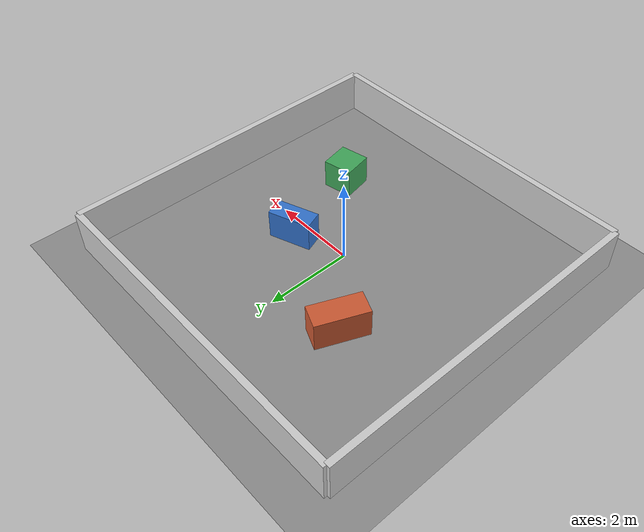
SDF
<?xml version="1.0"?>
<sdf version="1.6">
  <world name="mapping_world">
    <physics name="default_physics" type="ode">
      <max_step_size>0.001</max_step_size>
      <real_time_factor>1.0</real_time_factor>
      <real_time_update_rate>1000</real_time_update_rate>
    </physics>

    <scene>
      <ambient>0.4 0.4 0.4 1</ambient>
      <background>0.7 0.7 0.8 1</background>
    </scene>

    <light name="sun" type="directional">
      <cast_shadows>true</cast_shadows>
      <pose>0 0 10 0 0 0</pose>
      <diffuse>0.8 0.8 0.8 1</diffuse>
      <specular>0.2 0.2 0.2 1</specular>
      <attenuation>
        <range>1000</range>
        <constant>0.9</constant>
        <linear>0.01</linear>
        <quadratic>0.001</quadratic>
      </attenuation>
      <direction>-0.5 0.1 -0.9</direction>
    </light>

    <model name="ground_plane">
      <static>true</static>
      <link name="link">
        <collision name="collision">
          <geometry>
            <plane>
              <normal>0 0 1</normal>
              <size>20 20</size>
            </plane>
          </geometry>
        </collision>
        <visual name="visual">
          <geometry>
            <plane>
              <normal>0 0 1</normal>
              <size>20 20</size>
            </plane>
          </geometry>
          <material>
            <ambient>0.55 0.55 0.55 1</ambient>
            <diffuse>0.55 0.55 0.55 1</diffuse>
          </material>
        </visual>
      </link>
    </model>

    <model name="north_wall">
      <static>true</static>
      <pose>0 4 0.5 0 0 0</pose>
      <link name="link">
        <collision name="collision">
          <geometry><box><size>8 0.15 1</size></box></geometry>
        </collision>
        <visual name="visual">
          <geometry><box><size>8 0.15 1</size></box></geometry>
          <material><ambient>0.8 0.8 0.8 1</ambient><diffuse>0.8 0.8 0.8 1</diffuse></material>
        </visual>
      </link>
    </model>

    <model name="south_wall">
      <static>true</static>
      <pose>0 -4 0.5 0 0 0</pose>
      <link name="link">
        <collision name="collision">
          <geometry><box><size>8 0.15 1</size></box></geometry>
        </collision>
        <visual name="visual">
          <geometry><box><size>8 0.15 1</size></box></geometry>
          <material><ambient>0.8 0.8 0.8 1</ambient><diffuse>0.8 0.8 0.8 1</diffuse></material>
        </visual>
      </link>
    </model>

    <model name="east_wall">
      <static>true</static>
      <pose>4 0 0.5 0 0 0</pose>
      <link name="link">
        <collision name="collision">
          <geometry><box><size>0.15 8 1</size></box></geometry>
        </collision>
        <visual name="visual">
          <geometry><box><size>0.15 8 1</size></box></geometry>
          <material><ambient>0.8 0.8 0.8 1</ambient><diffuse>0.8 0.8 0.8 1</diffuse></material>
        </visual>
      </link>
    </model>

    <model name="west_wall">
      <static>true</static>
      <pose>-4 0 0.5 0 0 0</pose>
      <link name="link">
        <collision name="collision">
          <geometry><box><size>0.15 8 1</size></box></geometry>
        </collision>
        <visual name="visual">
          <geometry><box><size>0.15 8 1</size></box></geometry>
          <material><ambient>0.8 0.8 0.8 1</ambient><diffuse>0.8 0.8 0.8 1</diffuse></material>
        </visual>
      </link>
    </model>

    <model name="center_block">
      <static>true</static>
      <pose>1.2 0.4 0.35 0 0 0.35</pose>
      <link name="link">
        <collision name="collision">
          <geometry><box><size>1.0 0.45 0.7</size></box></geometry>
        </collision>
        <visual name="visual">
          <geometry><box><size>1.0 0.45 0.7</size></box></geometry>
          <material><ambient>0.2 0.45 0.8 1</ambient><diffuse>0.2 0.45 0.8 1</diffuse></material>
        </visual>
      </link>
    </model>

    <model name="left_block">
      <static>true</static>
      <pose>-1.5 1.5 0.35 0 0 -0.4</pose>
      <link name="link">
        <collision name="collision">
          <geometry><box><size>0.55 1.2 0.7</size></box></geometry>
        </collision>
        <visual name="visual">
          <geometry><box><size>0.55 1.2 0.7</size></box></geometry>
          <material><ambient>0.8 0.35 0.2 1</ambient><diffuse>0.8 0.35 0.2 1</diffuse></material>
        </visual>
      </link>
    </model>

    <model name="right_block">
      <static>true</static>
      <pose>1.8 -1.7 0.35 0 0 0.2</pose>
      <link name="link">
        <collision name="collision">
          <geometry><box><size>0.7 0.7 0.7</size></box></geometry>
        </collision>
        <visual name="visual">
          <geometry><box><size>0.7 0.7 0.7</size></box></geometry>
          <material><ambient>0.25 0.65 0.35 1</ambient><diffuse>0.25 0.65 0.35 1</diffuse></material>
        </visual>
      </link>
    </model>
  </world>
</sdf>
